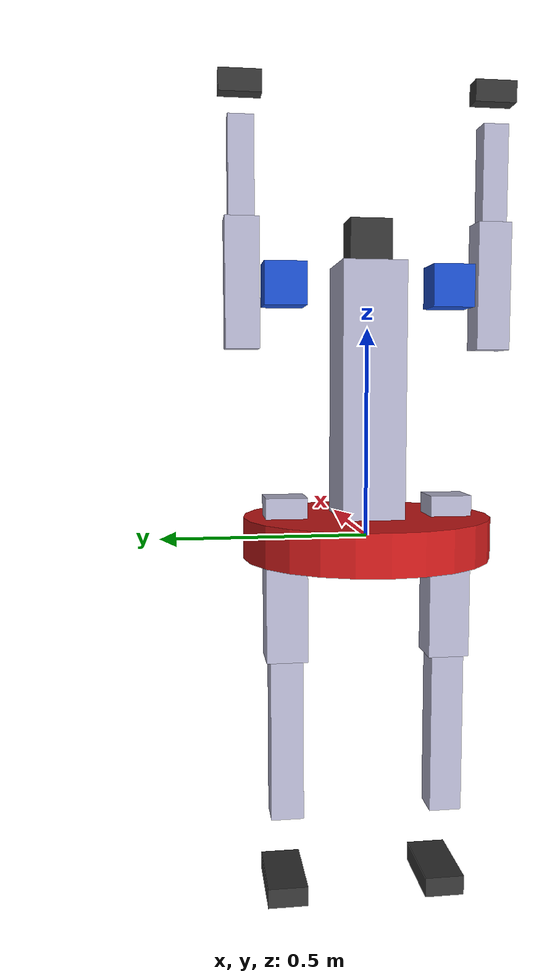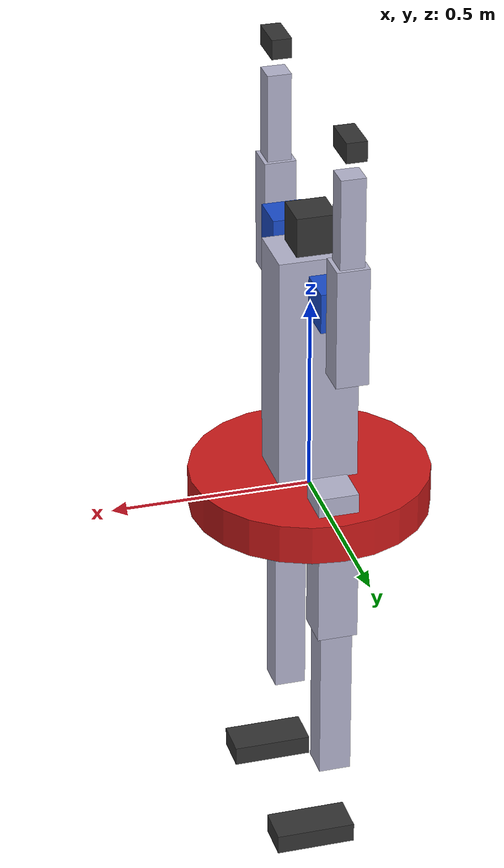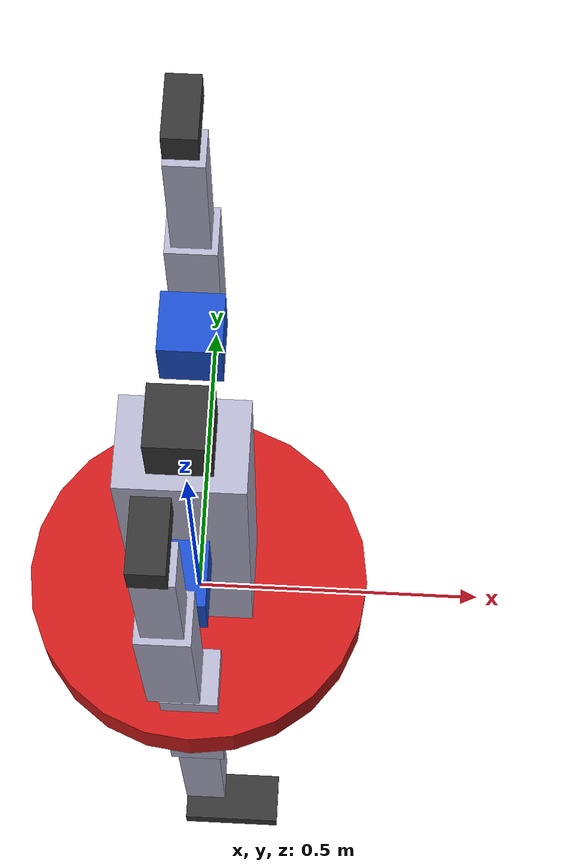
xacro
<?xml version="1.0"?>
<robot name="hyperion_web_compatible" xmlns:xacro="http://www.ros.org/wiki/xacro">

  <!-- ============= 基础常量 ============= -->
  <xacro:property name="PI" value="3.1415926535897931" />

  <!-- ============= 材料定义 ============= -->
  <material name="titanium">
    <color rgba="0.7 0.7 0.8 1.0"/>
  </material>
  <material name="carbon_fiber">
    <color rgba="0.2 0.2 0.2 1.0"/>
  </material>
  <material name="red_paint">
    <color rgba="0.8 0.1 0.1 1.0"/>
  </material>
  <material name="blue_indicator">
    <color rgba="0.1 0.3 0.8 1.0"/>
  </material>

  <!-- ============= 宏定义 ============= -->

  <!--
       [修改] complex_joint
       1. 移除了 xyz_limits 的 split() 操作，改为接收 explicit 的 lower/upper 参数
       2. 移除了 Gazebo/ROS Control 特有的标签 (safety_controller, calibration 等)，这些对 Web 可视化无用且可能干扰阅读
  -->
  <xacro:macro name="complex_joint" params="name type parent child xyz rpy axis limit_lower:=-3.14 limit_upper:=3.14">
    <joint name="${name}" type="${type}">
      <parent link="${parent}"/>
      <child link="${child}"/>
      <origin xyz="${xyz}" rpy="${rpy}"/>
      <axis xyz="${axis}"/>
      <limit lower="${limit_lower}" upper="${limit_upper}" effort="100" velocity="10"/>
    </joint>
  </xacro:macro>

  <xacro:macro name="complex_link" params="name color:=titanium visual_size:='0.1 0.1 0.1'">
    <link name="${name}">
      <visual>
        <origin xyz="0 0 0" rpy="0 0 0"/>
        <geometry>
          <box size="${visual_size}"/>
        </geometry>
        <material name="${color}"/>
      </visual>
      <collision>
        <origin xyz="0 0 0" rpy="0 0 0"/>
        <geometry>
          <box size="${visual_size}"/>
        </geometry>
      </collision>
      <inertial>
        <mass value="1.0"/>
        <inertia ixx="0.1" ixy="0" ixz="0" iyy="0.1" iyz="0" izz="0.1"/>
      </inertial>
    </link>
  </xacro:macro>

  <!-- ============= 机器人主体构建 ============= -->

  <!-- 1. 基座 -->
  <link name="base_link">
    <visual>
      <geometry>
        <cylinder radius="0.3" length="0.1"/>
      </geometry>
      <material name="red_paint"/>
    </visual>
  </link>

  <!-- 2. 躯干 -->
  <complex_link name="torso" visual_size="0.2 0.15 0.6" color="titanium"/>

  <complex_joint name="torso_joint" type="revolute"
                 parent="base_link" child="torso"
                 xyz="0 0 0.35" rpy="0 0 0"
                 axis="0 0 1"
                 limit_lower="-1.57" limit_upper="1.57"/>

  <!-- 3. 头部 (简化为两段) -->
  <complex_link name="head_base" visual_size="0.1 0.1 0.1" color="carbon_fiber"/>
  <complex_joint name="head_pan_joint" type="revolute"
                 parent="torso" child="head_base"
                 xyz="0 0 0.35" rpy="0 0 0"
                 axis="0 0 1"
                 limit_lower="-1.5" limit_upper="1.5"/>

  <!-- ============= 手臂构建宏 (带循环) ============= -->
  <!--
       [兼容性修改]
       JS 解析器处理 Python 列表索引 (arm_lengths[i]) 可能不稳定。
       这里我们使用简单的数学计算来生成位置，不再依赖数组查找。
  -->
  <xacro:macro name="build_arm" params="side reflect">

    <!-- 肩部 -->
    <complex_link name="${side}_shoulder" visual_size="0.1 0.1 0.1" color="blue_indicator"/>
    <complex_joint name="${side}_shoulder_joint" type="revolute"
                   parent="torso" child="${side}_shoulder"
                   xyz="0 ${reflect * 0.2} 0.25" rpy="0 0 0"
                   axis="0 1 0"
                   limit_lower="-1.57" limit_upper="1.57"/>

    <!-- 上臂 -->
    <complex_link name="${side}_upper_arm" visual_size="0.08 0.08 0.3" color="titanium"/>
    <complex_joint name="${side}_elbow_joint" type="revolute"
                   parent="${side}_shoulder" child="${side}_upper_arm"
                   xyz="0 ${reflect * 0.1} 0" rpy="0 0 0"
                   axis="1 0 0"
                   limit_lower="-2.0" limit_upper="2.0"/>

    <!-- 前臂 -->
    <complex_link name="${side}_forearm" visual_size="0.06 0.06 0.25" color="titanium"/>
    <complex_joint name="${side}_wrist_joint" type="revolute"
                   parent="${side}_upper_arm" child="${side}_forearm"
                   xyz="0 0 0.25" rpy="0 0 0"
                   axis="0 1 0"
                   limit_lower="-1.5" limit_upper="1.5"/>

    <!-- 手部 -->
    <complex_link name="${side}_hand" visual_size="0.05 0.1 0.05" color="carbon_fiber"/>
    <complex_joint name="${side}_hand_joint" type="fixed"
                   parent="${side}_forearm" child="${side}_hand"
                   xyz="0 0 0.2" rpy="0 0 0"
                   axis="0 0 1"/>

  </xacro:macro>

  <!-- 实例化双臂 -->
  <!-- reflect: 1 for left, -1 for right -->
  <build_arm side="left" reflect="1"/>
  <build_arm side="right" reflect="-1"/>

  <!-- ============= 腿部构建宏 ============= -->
  <xacro:macro name="build_leg" params="side reflect">

    <!-- 髋关节 -->
    <complex_link name="${side}_thigh" visual_size="0.1 0.1 0.4" color="titanium"/>
    <complex_joint name="${side}_hip_joint" type="revolute"
                   parent="base_link" child="${side}_thigh"
                   xyz="0 ${reflect * 0.2} -0.1" rpy="0 0 0"
                   axis="0 1 0"
                   limit_lower="-1.0" limit_upper="1.0"/>

    <!-- 小腿 -->
    <complex_link name="${side}_shin" visual_size="0.08 0.08 0.4" color="titanium"/>
    <complex_joint name="${side}_knee_joint" type="revolute"
                   parent="${side}_thigh" child="${side}_shin"
                   xyz="0 0 -0.4" rpy="0 0 0"
                   axis="0 1 0"
                   limit_lower="0" limit_upper="2.0"/>

    <complex_link name="${side}_foot" visual_size="0.2 0.1 0.05" color="carbon_fiber"/>
    <complex_joint name="${side}_ankle_joint" type="revolute"
                   parent="${side}_shin" child="${side}_foot"
                   xyz="0.05 0 -0.4" rpy="0 0 0"
                   axis="0 1 0"
                   limit_lower="-0.5" limit_upper="0.5"/>
  </xacro:macro>

  <!-- 实例化双腿 -->
  <build_leg side="left" reflect="1"/>
  <build_leg side="right" reflect="-1"/>

</robot>
